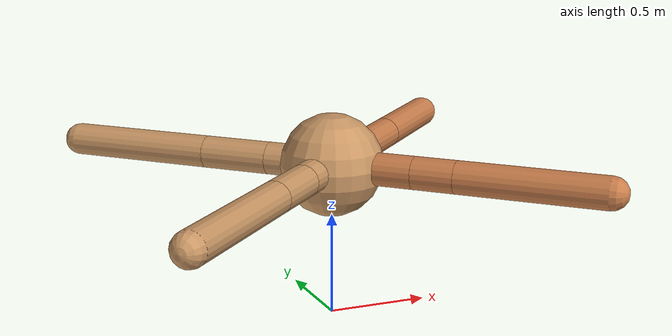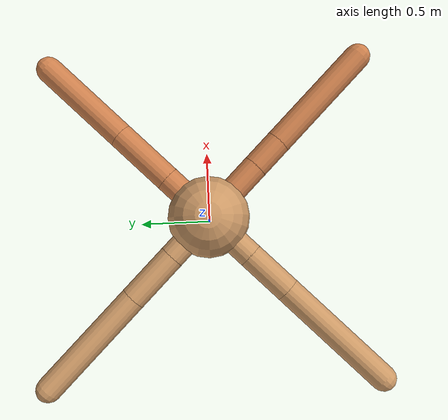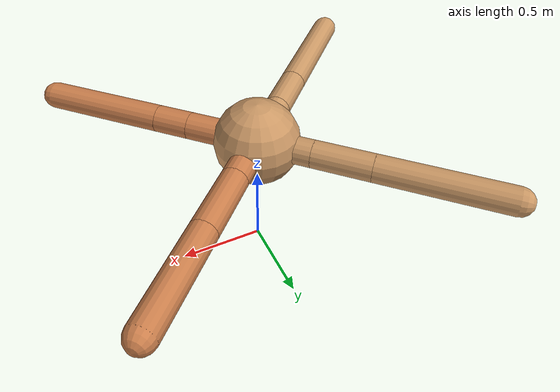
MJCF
<mujoco model="ant">
  <compiler angle="degree" coordinate="local" inertiafromgeom="true" />
  <option integrator="RK4" timestep="0.01" />
  <custom>
    <numeric data="0.0 0.0 0.55 1.0 0.0 0.0 0.0 0.0 1.0 0.0 -1.0 0.0 -1.0 0.0 1.0" name="init_qpos" />
  </custom>
  <default>
    <joint armature="1" damping="1" limited="true" />
    <geom conaffinity="0" condim="3" density="5.0" friction="1.5 0.1 0.1" margin="0.01" rgba="0.8 0.6 0.4 1" />
  </default>
  <worldbody>
    <body name="torso" pos="0 0 0.75">
      <geom name="torso_geom" pos="0 0 0" size="0.25" type="sphere" />

      <body name="front_left_leg" pos="0 0 0">
        <geom fromto="0.0 0.0 0.0 0.24055924413818117 0.24055924413818117 0.0" name="aux_1_geom" size="0.08" type="capsule" rgba=".8 .5 .3 1" />
        <body name="aux_1" pos="0.24055924413818117 0.24055924413818117 0.0">
          <joint axis="0 0 1" name="hip_1" pos="0.0 0.0 0.0" range="-40 40" type="hinge" />
          <geom fromto="0.0 0.0 0.0 0.27549683864371055 0.27549683864371055 0.0" name="left_leg_geom" size="0.08" type="capsule" rgba=".8 .5 .3 1" />
          <body pos="0.27549683864371055 0.27549683864371055 0.0" name="front_left_foot">
            <joint axis="-1 1 0" name="ankle_1" pos="0.0 0.0 0.0" range="30 100" type="hinge" />
            <geom fromto="0.0 0.0 0.0 0.4252891624049726 0.4252891624049726 0.0" name="left_ankle_geom" size="0.08" type="capsule" rgba=".8 .5 .3 1" />
          </body>
        </body>
      </body>
      <body name="front_right_leg" pos="0 0 0">
        <geom fromto="0.0 0.0 0.0 -0.2321549168452441 0.2321549168452441 0.0" name="aux_2_geom" size="0.08" type="capsule" />
        <body name="aux_2" pos="-0.2321549168452441 0.2321549168452441 0.0">
          <joint axis="0 0 1" name="hip_2" pos="0.0 0.0 0.0" range="-40 40" type="hinge" />
          <geom fromto="0.0 0.0 0.0 -0.241567066356637 0.241567066356637 0.0" name="right_leg_geom" size="0.08" type="capsule" />
          <body pos="-0.241567066356637 0.241567066356637 0.0" name="front_right_foot">
            <joint axis="1 1 0" name="ankle_2" pos="0.0 0.0 0.0" range="-100 -30" type="hinge" />
            <geom fromto="0.0 0.0 0.0 -0.5242997777448005 0.5242997777448005 0.0" name="right_ankle_geom" size="0.08" type="capsule" />
          </body>
        </body>
      </body>
      <body name="left_back_leg" pos="0 0 0">
        <geom fromto="0.0 0.0 0.0 -0.24368079833646394 -0.24368079833646394 0.0" name="aux_3_geom" size="0.08" type="capsule" />
        <body name="aux_3" pos="-0.24368079833646394 -0.24368079833646394 0.0">
          <joint axis="0 0 1" name="hip_3" pos="0.0 0.0 0.0" range="-40 40" type="hinge" />
          <geom fromto="0.0 0.0 0.0 -0.21456028185157192 -0.21456028185157192 0.0" name="back_leg_geom" size="0.08" type="capsule" />
          <body pos="-0.21456028185157192 -0.21456028185157192 0.0" name="left_back_foot">
            <joint axis="-1 1 0" name="ankle_3" pos="0.0 0.0 0.0" range="-100 -30" type="hinge" />
            <geom fromto="0.0 0.0 0.0 -0.5503426356204524 -0.5503426356204524 0.0" name="third_ankle_geom" size="0.08" type="capsule" />
          </body>
        </body>
      </body>
      <body name="right_back_leg" pos="0 0 0">
        <geom fromto="0.0 0.0 0.0 0.29526759068221725 -0.29526759068221725 0.0" name="aux_4_geom" size="0.08" type="capsule" rgba=".8 .5 .3 1" />
        <body name="aux_4" pos="0.29526759068221725 -0.29526759068221725 0.0">
          <joint axis="0 0 1" name="hip_4" pos="0.0 0.0 0.0" range="-40 40" type="hinge" />
          <geom fromto="0.0 0.0 0.0 0.14566250394909527 -0.14566250394909527 0.0" name="rightback_leg_geom" size="0.08" type="capsule" rgba=".8 .5 .3 1" />
          <body pos="0.14566250394909527 -0.14566250394909527 0.0" name="right_back_foot">
            <joint axis="1 1 0" name="ankle_4" pos="0.0 0.0 0.0" range="30 100" type="hinge" />
            <geom fromto="0.0 0.0 0.0 0.5073211985853711 -0.5073211985853711 0.0" name="fourth_ankle_geom" size="0.08" type="capsule" rgba=".8 .5 .3 1" />
          </body>
        </body>
      </body>
    </body>
  </worldbody>
  <actuator>
    <motor ctrllimited="true" ctrlrange="-1.0 1.0" joint="hip_4" gear="150" />
    <motor ctrllimited="true" ctrlrange="-1.0 1.0" joint="ankle_4" gear="150" />
    <motor ctrllimited="true" ctrlrange="-1.0 1.0" joint="hip_1" gear="150" />
    <motor ctrllimited="true" ctrlrange="-1.0 1.0" joint="ankle_1" gear="150" />
    <motor ctrllimited="true" ctrlrange="-1.0 1.0" joint="hip_2" gear="150" />
    <motor ctrllimited="true" ctrlrange="-1.0 1.0" joint="ankle_2" gear="150" />
    <motor ctrllimited="true" ctrlrange="-1.0 1.0" joint="hip_3" gear="150" />
    <motor ctrllimited="true" ctrlrange="-1.0 1.0" joint="ankle_3" gear="150" />
  </actuator>
</mujoco>
